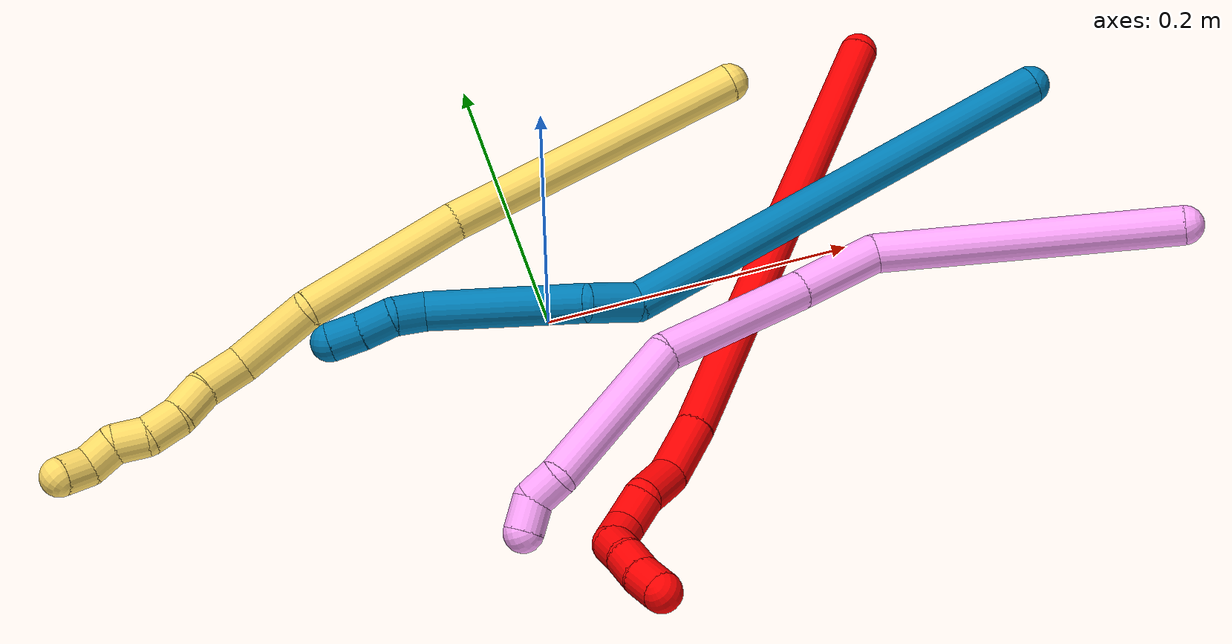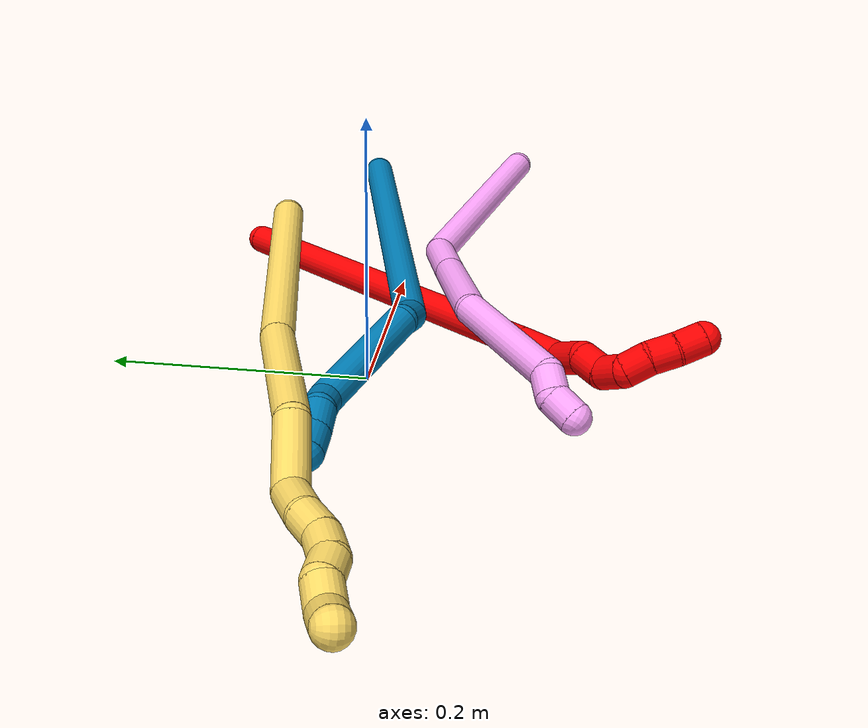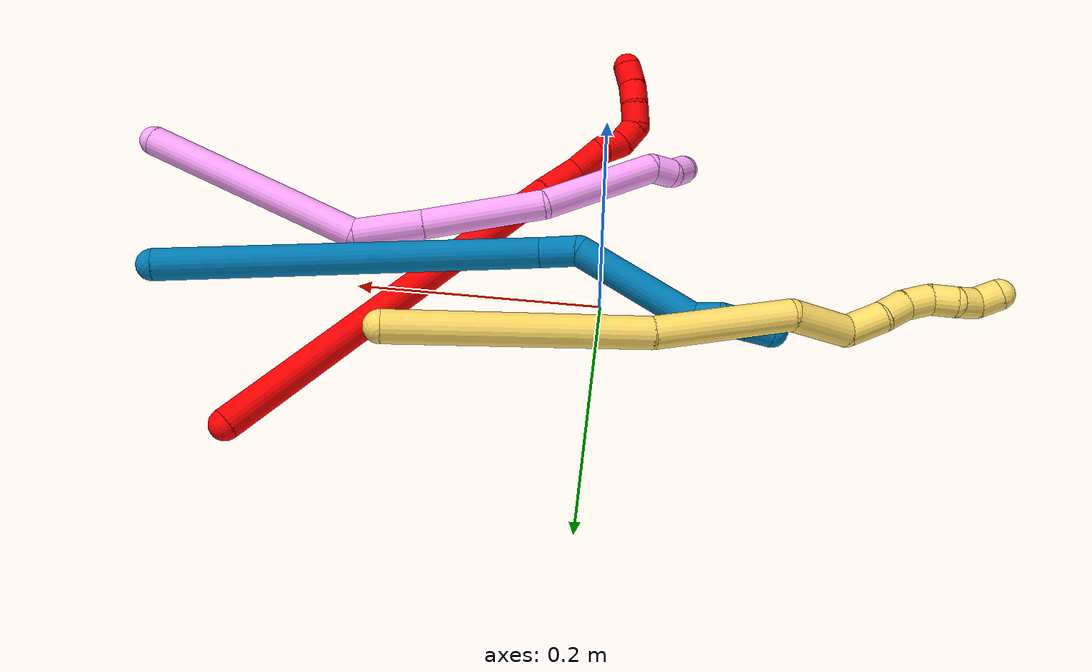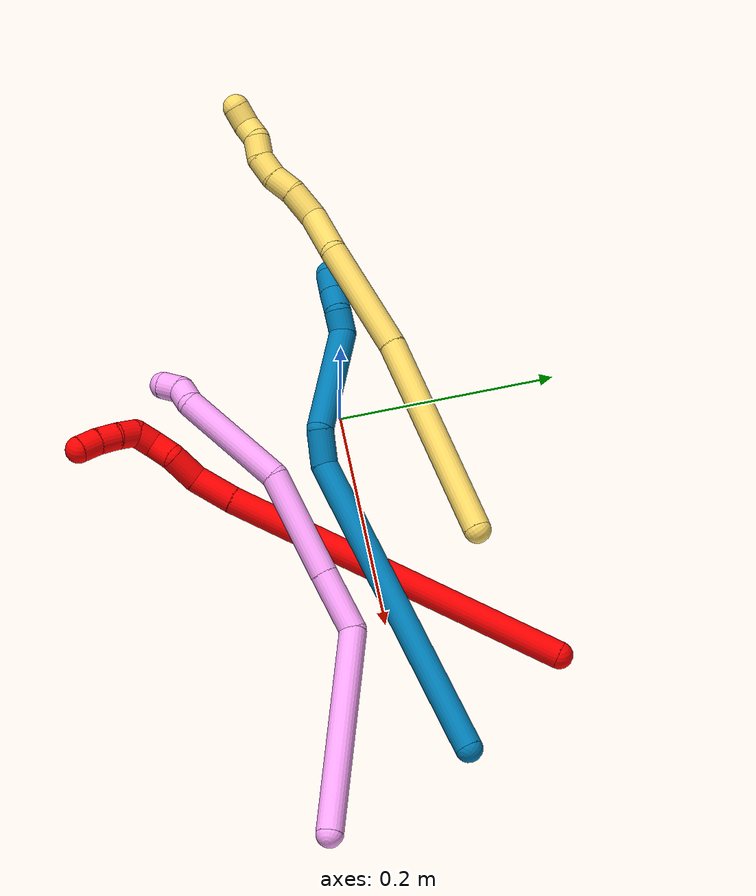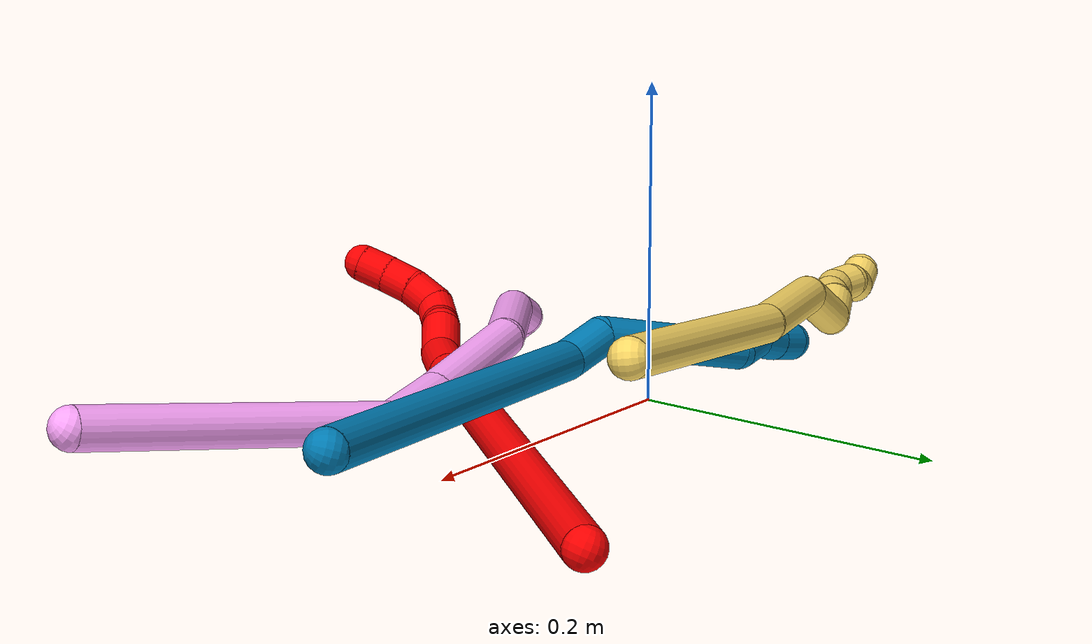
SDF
<sdf version="1.7">
 <world name="default">
  <model name="2">
   <static>0</static>
   <link name="2">
    <collision name="collision-cylinder-e_1_1_4">
     <pose>-0.081338 -0.140689 0.024939 1.39536 -0.517515 -0.43672</pose>
     <geometry><cylinder><radius>0.0125</radius><length>0.328824</length></cylinder></geometry>
     <surface>
      <friction><ode><mu>1.16</mu><mu2>1.16</mu2><slip1>0</slip1><slip2>0</slip2></ode></friction>
      <contact><ode><kp>1e+06</kp><kd>1</kd><max_vel>0</max_vel><min_depth>0.001</min_depth></ode></contact>
     </surface>
    </collision>
    <visual name="visual-cylinder-e_1_1_4">
     <pose>-0.081338 -0.140689 0.024939 1.39536 -0.517515 -0.43672</pose>
     <geometry><cylinder><radius>0.0125</radius><length>0.328824</length></cylinder></geometry>
     <material><ambient>1 0 0 1</ambient></material>
    </visual>
    <collision name="collision-cylinder-e_2_4_5">
     <pose>-0.173275 -0.297369 0.053878 1.32564 -0.571413 -0.450817</pose>
     <geometry><cylinder><radius>0.0125</radius><length>0.039192</length></cylinder></geometry>
     <surface>
      <friction><ode><mu>1.16</mu><mu2>1.16</mu2><slip1>0</slip1><slip2>0</slip2></ode></friction>
      <contact><ode><kp>1e+06</kp><kd>1</kd><max_vel>0</max_vel><min_depth>0.001</min_depth></ode></contact>
     </surface>
    </collision>
    <visual name="visual-cylinder-e_2_4_5">
     <pose>-0.173275 -0.297369 0.053878 1.32564 -0.571413 -0.450817</pose>
     <geometry><cylinder><radius>0.0125</radius><length>0.039192</length></cylinder></geometry>
     <material><ambient>1 0 0 1</ambient></material>
    </visual>
    <collision name="collision-cylinder-e_3_5_6">
     <pose>-0.189959 -0.323875 0.066426 0.888284 -0.422154 -0.203217</pose>
     <geometry><cylinder><radius>0.0125</radius><length>0.029712</length></cylinder></geometry>
     <surface>
      <friction><ode><mu>1.16</mu><mu2>1.16</mu2><slip1>0</slip1><slip2>0</slip2></ode></friction>
      <contact><ode><kp>1e+06</kp><kd>1</kd><max_vel>0</max_vel><min_depth>0.001</min_depth></ode></contact>
     </surface>
    </collision>
    <visual name="visual-cylinder-e_3_5_6">
     <pose>-0.189959 -0.323875 0.066426 0.888284 -0.422154 -0.203217</pose>
     <geometry><cylinder><radius>0.0125</radius><length>0.029712</length></cylinder></geometry>
     <material><ambient>1 0 0 1</ambient></material>
    </visual>
    <collision name="collision-cylinder-e_4_6_7">
     <pose>-0.203669 -0.34236 0.075994 1.44355 -0.759115 -0.675341</pose>
     <geometry><cylinder><radius>0.0125</radius><length>0.022149</length></cylinder></geometry>
     <surface>
      <friction><ode><mu>1.16</mu><mu2>1.16</mu2><slip1>0</slip1><slip2>0</slip2></ode></friction>
      <contact><ode><kp>1e+06</kp><kd>1</kd><max_vel>0</max_vel><min_depth>0.001</min_depth></ode></contact>
     </surface>
    </collision>
    <visual name="visual-cylinder-e_4_6_7">
     <pose>-0.203669 -0.34236 0.075994 1.44355 -0.759115 -0.675341</pose>
     <geometry><cylinder><radius>0.0125</radius><length>0.022149</length></cylinder></geometry>
     <material><ambient>1 0 0 1</ambient></material>
    </visual>
    <collision name="collision-cylinder-e_5_7_8">
     <pose>-0.214045 -0.358622 0.081984 1.03083 -0.27749 -0.157883</pose>
     <geometry><cylinder><radius>0.0125</radius><length>0.020105</length></cylinder></geometry>
     <surface>
      <friction><ode><mu>1.16</mu><mu2>1.16</mu2><slip1>0</slip1><slip2>0</slip2></ode></friction>
      <contact><ode><kp>1e+06</kp><kd>1</kd><max_vel>0</max_vel><min_depth>0.001</min_depth></ode></contact>
     </surface>
    </collision>
    <visual name="visual-cylinder-e_5_7_8">
     <pose>-0.214045 -0.358622 0.081984 1.03083 -0.27749 -0.157883</pose>
     <geometry><cylinder><radius>0.0125</radius><length>0.020105</length></cylinder></geometry>
     <material><ambient>1 0 0 1</ambient></material>
    </visual>
    <collision name="collision-cylinder-e_6_8_9">
     <pose>-0.212675 -0.375698 0.089386 1.30072 0.424891 0.325299</pose>
     <geometry><cylinder><radius>0.0125</radius><length>0.020006</length></cylinder></geometry>
     <surface>
      <friction><ode><mu>1.16</mu><mu2>1.16</mu2><slip1>0</slip1><slip2>0</slip2></ode></friction>
      <contact><ode><kp>1e+06</kp><kd>1</kd><max_vel>0</max_vel><min_depth>0.001</min_depth></ode></contact>
     </surface>
    </collision>
    <visual name="visual-cylinder-e_6_8_9">
     <pose>-0.212675 -0.375698 0.089386 1.30072 0.424891 0.325299</pose>
     <geometry><cylinder><radius>0.0125</radius><length>0.020006</length></cylinder></geometry>
     <material><ambient>1 0 0 1</ambient></material>
    </visual>
    <collision name="collision-cylinder-e_7_9_10">
     <pose>-0.204902 -0.393775 0.092417 1.50639 0.373503 0.350679</pose>
     <geometry><cylinder><radius>0.0125</radius><length>0.020007</length></cylinder></geometry>
     <surface>
      <friction><ode><mu>1.16</mu><mu2>1.16</mu2><slip1>0</slip1><slip2>0</slip2></ode></friction>
      <contact><ode><kp>1e+06</kp><kd>1</kd><max_vel>0</max_vel><min_depth>0.001</min_depth></ode></contact>
     </surface>
    </collision>
    <visual name="visual-cylinder-e_7_9_10">
     <pose>-0.204902 -0.393775 0.092417 1.50639 0.373503 0.350679</pose>
     <geometry><cylinder><radius>0.0125</radius><length>0.020007</length></cylinder></geometry>
     <material><ambient>1 0 0 1</ambient></material>
    </visual>
    <collision name="collision-cylinder-e_8_10_2">
     <pose>-0.196329 -0.411776 0.093109 1.56012 0.514537 0.509309</pose>
     <geometry><cylinder><radius>0.0125</radius><length>0.020004</length></cylinder></geometry>
     <surface>
      <friction><ode><mu>1.16</mu><mu2>1.16</mu2><slip1>0</slip1><slip2>0</slip2></ode></friction>
      <contact><ode><kp>1e+06</kp><kd>1</kd><max_vel>0</max_vel><min_depth>0.001</min_depth></ode></contact>
     </surface>
    </collision>
    <visual name="visual-cylinder-e_8_10_2">
     <pose>-0.196329 -0.411776 0.093109 1.56012 0.514537 0.509309</pose>
     <geometry><cylinder><radius>0.0125</radius><length>0.020004</length></cylinder></geometry>
     <material><ambient>1 0 0 1</ambient></material>
    </visual>
    <collision name="collision-sphere-2">
     <pose>-0.191407 -0.420483 0.093202 0 -0 0</pose>
     <geometry><sphere><radius>0.0125</radius></sphere></geometry>
     <surface>
      <friction><ode><mu>1.16</mu><mu2>1.16</mu2><slip1>0</slip1><slip2>0</slip2></ode></friction>
      <contact><ode><kp>1e+06</kp><kd>1</kd><max_vel>0</max_vel><min_depth>0.001</min_depth></ode></contact>
     </surface>
    </collision>
    <visual name="visual-sphere-2">
     <pose>-0.191407 -0.420483 0.093202 0 -0 0</pose>
     <geometry><sphere><radius>0.0125</radius></sphere></geometry>
     <material><ambient>1 0 0 1</ambient></material>
    </visual>
    <collision name="collision-sphere-10">
     <pose>-0.201252 -0.40307 0.093016 0 -0 0</pose>
     <geometry><sphere><radius>0.0125</radius></sphere></geometry>
     <surface>
      <friction><ode><mu>1.16</mu><mu2>1.16</mu2><slip1>0</slip1><slip2>0</slip2></ode></friction>
      <contact><ode><kp>1e+06</kp><kd>1</kd><max_vel>0</max_vel><min_depth>0.001</min_depth></ode></contact>
     </surface>
    </collision>
    <visual name="visual-sphere-10">
     <pose>-0.201252 -0.40307 0.093016 0 -0 0</pose>
     <geometry><sphere><radius>0.0125</radius></sphere></geometry>
     <material><ambient>1 0 0 1</ambient></material>
    </visual>
    <collision name="collision-sphere-9">
     <pose>-0.208552 -0.384481 0.091817 0 -0 0</pose>
     <geometry><sphere><radius>0.0125</radius></sphere></geometry>
     <surface>
      <friction><ode><mu>1.16</mu><mu2>1.16</mu2><slip1>0</slip1><slip2>0</slip2></ode></friction>
      <contact><ode><kp>1e+06</kp><kd>1</kd><max_vel>0</max_vel><min_depth>0.001</min_depth></ode></contact>
     </surface>
    </collision>
    <visual name="visual-sphere-9">
     <pose>-0.208552 -0.384481 0.091817 0 -0 0</pose>
     <geometry><sphere><radius>0.0125</radius></sphere></geometry>
     <material><ambient>1 0 0 1</ambient></material>
    </visual>
    <collision name="collision-sphere-4">
     <pose>-0.162677 -0.281379 0.049878 0 -0 0</pose>
     <geometry><sphere><radius>0.0125</radius></sphere></geometry>
     <surface>
      <friction><ode><mu>1.16</mu><mu2>1.16</mu2><slip1>0</slip1><slip2>0</slip2></ode></friction>
      <contact><ode><kp>1e+06</kp><kd>1</kd><max_vel>0</max_vel><min_depth>0.001</min_depth></ode></contact>
     </surface>
    </collision>
    <visual name="visual-sphere-4">
     <pose>-0.162677 -0.281379 0.049878 0 -0 0</pose>
     <geometry><sphere><radius>0.0125</radius></sphere></geometry>
     <material><ambient>1 0 0 1</ambient></material>
    </visual>
    <collision name="collision-sphere-1">
     <geometry><sphere><radius>0.0125</radius></sphere></geometry>
     <surface>
      <friction><ode><mu>1.16</mu><mu2>1.16</mu2><slip1>0</slip1><slip2>0</slip2></ode></friction>
      <contact><ode><kp>1e+06</kp><kd>1</kd><max_vel>0</max_vel><min_depth>0.001</min_depth></ode></contact>
     </surface>
    </collision>
    <visual name="visual-sphere-1">
     <geometry><sphere><radius>0.0125</radius></sphere></geometry>
     <material><ambient>1 0 0 1</ambient></material>
    </visual>
    <collision name="collision-sphere-8">
     <pose>-0.216799 -0.366914 0.086954 0 -0 0</pose>
     <geometry><sphere><radius>0.0125</radius></sphere></geometry>
     <surface>
      <friction><ode><mu>1.16</mu><mu2>1.16</mu2><slip1>0</slip1><slip2>0</slip2></ode></friction>
      <contact><ode><kp>1e+06</kp><kd>1</kd><max_vel>0</max_vel><min_depth>0.001</min_depth></ode></contact>
     </surface>
    </collision>
    <visual name="visual-sphere-8">
     <pose>-0.216799 -0.366914 0.086954 0 -0 0</pose>
     <geometry><sphere><radius>0.0125</radius></sphere></geometry>
     <material><ambient>1 0 0 1</ambient></material>
    </visual>
    <collision name="collision-sphere-5">
     <pose>-0.183873 -0.313359 0.057879 0 -0 0</pose>
     <geometry><sphere><radius>0.0125</radius></sphere></geometry>
     <surface>
      <friction><ode><mu>1.16</mu><mu2>1.16</mu2><slip1>0</slip1><slip2>0</slip2></ode></friction>
      <contact><ode><kp>1e+06</kp><kd>1</kd><max_vel>0</max_vel><min_depth>0.001</min_depth></ode></contact>
     </surface>
    </collision>
    <visual name="visual-sphere-5">
     <pose>-0.183873 -0.313359 0.057879 0 -0 0</pose>
     <geometry><sphere><radius>0.0125</radius></sphere></geometry>
     <material><ambient>1 0 0 1</ambient></material>
    </visual>
    <collision name="collision-sphere-6">
     <pose>-0.196046 -0.334391 0.074974 0 -0 0</pose>
     <geometry><sphere><radius>0.0125</radius></sphere></geometry>
     <surface>
      <friction><ode><mu>1.16</mu><mu2>1.16</mu2><slip1>0</slip1><slip2>0</slip2></ode></friction>
      <contact><ode><kp>1e+06</kp><kd>1</kd><max_vel>0</max_vel><min_depth>0.001</min_depth></ode></contact>
     </surface>
    </collision>
    <visual name="visual-sphere-6">
     <pose>-0.196046 -0.334391 0.074974 0 -0 0</pose>
     <geometry><sphere><radius>0.0125</radius></sphere></geometry>
     <material><ambient>1 0 0 1</ambient></material>
    </visual>
    <collision name="collision-sphere-7">
     <pose>-0.211291 -0.350329 0.077013 0 -0 0</pose>
     <geometry><sphere><radius>0.0125</radius></sphere></geometry>
     <surface>
      <friction><ode><mu>1.16</mu><mu2>1.16</mu2><slip1>0</slip1><slip2>0</slip2></ode></friction>
      <contact><ode><kp>1e+06</kp><kd>1</kd><max_vel>0</max_vel><min_depth>0.001</min_depth></ode></contact>
     </surface>
    </collision>
    <visual name="visual-sphere-7">
     <pose>-0.211291 -0.350329 0.077013 0 -0 0</pose>
     <geometry><sphere><radius>0.0125</radius></sphere></geometry>
     <material><ambient>1 0 0 1</ambient></material>
    </visual>
    <inertial>
     <pose>-0.120554 -0.211929 0.042234 0 -0 0</pose>
     <mass>0.5</mass>
     <inertia>
      <ixx>0.001246</ixx>
      <ixy>0</ixy>
      <ixz>0</ixz>
      <iyy>-3.7e-05</iyy>
      <iyz>0</iyz>
      <izz>0.004045</izz>
     </inertia>
    </inertial>
   </link>
   <pose>0.261971 0.146852 0.011496 -0.128845 -0.484479 -0.067757</pose>
  </model>
  <model name="4">
   <static>0</static>
   <link name="4">
    <collision name="collision-cylinder-e_1_1_4">
     <pose>-0.023985 0.031417 -0.088422 -2.8002 -0.250241 1.26073</pose>
     <geometry><cylinder><radius>0.0125</radius><length>0.193708</length></cylinder></geometry>
     <surface>
      <friction><ode><mu>1.16</mu><mu2>1.16</mu2><slip1>0</slip1><slip2>0</slip2></ode></friction>
      <contact><ode><kp>1e+06</kp><kd>1</kd><max_vel>0</max_vel><min_depth>0.001</min_depth></ode></contact>
     </surface>
    </collision>
    <visual name="visual-cylinder-e_1_1_4">
     <pose>-0.023985 0.031417 -0.088422 -2.8002 -0.250241 1.26073</pose>
     <geometry><cylinder><radius>0.0125</radius><length>0.193708</length></cylinder></geometry>
     <material><ambient>1 0.65098 0.996078 1</ambient></material>
    </visual>
    <collision name="collision-cylinder-e_2_4_5">
     <pose>-0.069653 0.067715 -0.195097 -2.8803 -0.854034 2.57934</pose>
     <geometry><cylinder><radius>0.0125</radius><length>0.057522</length></cylinder></geometry>
     <surface>
      <friction><ode><mu>1.16</mu><mu2>1.16</mu2><slip1>0</slip1><slip2>0</slip2></ode></friction>
      <contact><ode><kp>1e+06</kp><kd>1</kd><max_vel>0</max_vel><min_depth>0.001</min_depth></ode></contact>
     </surface>
    </collision>
    <visual name="visual-cylinder-e_2_4_5">
     <pose>-0.069653 0.067715 -0.195097 -2.8803 -0.854034 2.57934</pose>
     <geometry><cylinder><radius>0.0125</radius><length>0.057522</length></cylinder></geometry>
     <material><ambient>1 0.65098 0.996078 1</ambient></material>
    </visual>
    <collision name="collision-cylinder-e_3_5_6">
     <pose>-0.129833 0.083025 -0.244264 -2.81623 -0.867737 2.46066</pose>
     <geometry><cylinder><radius>0.0125</radius><length>0.100924</length></cylinder></geometry>
     <surface>
      <friction><ode><mu>1.16</mu><mu2>1.16</mu2><slip1>0</slip1><slip2>0</slip2></ode></friction>
      <contact><ode><kp>1e+06</kp><kd>1</kd><max_vel>0</max_vel><min_depth>0.001</min_depth></ode></contact>
     </surface>
    </collision>
    <visual name="visual-cylinder-e_3_5_6">
     <pose>-0.129833 0.083025 -0.244264 -2.81623 -0.867737 2.46066</pose>
     <geometry><cylinder><radius>0.0125</radius><length>0.100924</length></cylinder></geometry>
     <material><ambient>1 0.65098 0.996078 1</ambient></material>
    </visual>
    <collision name="collision-cylinder-e_4_6_7">
     <pose>-0.214588 0.085701 -0.300271 2.84188 -1.05445 -2.63409</pose>
     <geometry><cylinder><radius>0.0125</radius><length>0.106387</length></cylinder></geometry>
     <surface>
      <friction><ode><mu>1.16</mu><mu2>1.16</mu2><slip1>0</slip1><slip2>0</slip2></ode></friction>
      <contact><ode><kp>1e+06</kp><kd>1</kd><max_vel>0</max_vel><min_depth>0.001</min_depth></ode></contact>
     </surface>
    </collision>
    <visual name="visual-cylinder-e_4_6_7">
     <pose>-0.214588 0.085701 -0.300271 2.84188 -1.05445 -2.63409</pose>
     <geometry><cylinder><radius>0.0125</radius><length>0.106387</length></cylinder></geometry>
     <material><ambient>1 0.65098 0.996078 1</ambient></material>
    </visual>
    <collision name="collision-cylinder-e_5_7_8">
     <pose>-0.266192 0.075392 -0.33386 2.84946 -0.542233 -2.16802</pose>
     <geometry><cylinder><radius>0.0125</radius><length>0.020719</length></cylinder></geometry>
     <surface>
      <friction><ode><mu>1.16</mu><mu2>1.16</mu2><slip1>0</slip1><slip2>0</slip2></ode></friction>
      <contact><ode><kp>1e+06</kp><kd>1</kd><max_vel>0</max_vel><min_depth>0.001</min_depth></ode></contact>
     </surface>
    </collision>
    <visual name="visual-cylinder-e_5_7_8">
     <pose>-0.266192 0.075392 -0.33386 2.84946 -0.542233 -2.16802</pose>
     <geometry><cylinder><radius>0.0125</radius><length>0.020719</length></cylinder></geometry>
     <material><ambient>1 0.65098 0.996078 1</ambient></material>
    </visual>
    <collision name="collision-cylinder-e_6_8_2">
     <pose>-0.278852 0.066623 -0.346286 2.13472 -0.782884 -1.28622</pose>
     <geometry><cylinder><radius>0.0125</radius><length>0.02074</length></cylinder></geometry>
     <surface>
      <friction><ode><mu>1.16</mu><mu2>1.16</mu2><slip1>0</slip1><slip2>0</slip2></ode></friction>
      <contact><ode><kp>1e+06</kp><kd>1</kd><max_vel>0</max_vel><min_depth>0.001</min_depth></ode></contact>
     </surface>
    </collision>
    <visual name="visual-cylinder-e_6_8_2">
     <pose>-0.278852 0.066623 -0.346286 2.13472 -0.782884 -1.28622</pose>
     <geometry><cylinder><radius>0.0125</radius><length>0.02074</length></cylinder></geometry>
     <material><ambient>1 0.65098 0.996078 1</ambient></material>
    </visual>
    <collision name="collision-sphere-2">
     <pose>-0.286166 0.06041 -0.350216 0 -0 0</pose>
     <geometry><sphere><radius>0.0125</radius></sphere></geometry>
     <surface>
      <friction><ode><mu>1.16</mu><mu2>1.16</mu2><slip1>0</slip1><slip2>0</slip2></ode></friction>
      <contact><ode><kp>1e+06</kp><kd>1</kd><max_vel>0</max_vel><min_depth>0.001</min_depth></ode></contact>
     </surface>
    </collision>
    <visual name="visual-sphere-2">
     <pose>-0.286166 0.06041 -0.350216 0 -0 0</pose>
     <geometry><sphere><radius>0.0125</radius></sphere></geometry>
     <material><ambient>1 0.65098 0.996078 1</ambient></material>
    </visual>
    <collision name="collision-sphere-4">
     <pose>-0.047969 0.062834 -0.176844 0 -0 0</pose>
     <geometry><sphere><radius>0.0125</radius></sphere></geometry>
     <surface>
      <friction><ode><mu>1.16</mu><mu2>1.16</mu2><slip1>0</slip1><slip2>0</slip2></ode></friction>
      <contact><ode><kp>1e+06</kp><kd>1</kd><max_vel>0</max_vel><min_depth>0.001</min_depth></ode></contact>
     </surface>
    </collision>
    <visual name="visual-sphere-4">
     <pose>-0.047969 0.062834 -0.176844 0 -0 0</pose>
     <geometry><sphere><radius>0.0125</radius></sphere></geometry>
     <material><ambient>1 0.65098 0.996078 1</ambient></material>
    </visual>
    <collision name="collision-sphere-1">
     <geometry><sphere><radius>0.0125</radius></sphere></geometry>
     <surface>
      <friction><ode><mu>1.16</mu><mu2>1.16</mu2><slip1>0</slip1><slip2>0</slip2></ode></friction>
      <contact><ode><kp>1e+06</kp><kd>1</kd><max_vel>0</max_vel><min_depth>0.001</min_depth></ode></contact>
     </surface>
    </collision>
    <visual name="visual-sphere-1">
     <geometry><sphere><radius>0.0125</radius></sphere></geometry>
     <material><ambient>1 0.65098 0.996078 1</ambient></material>
    </visual>
    <collision name="collision-sphere-8">
     <pose>-0.271538 0.072836 -0.342357 0 -0 0</pose>
     <geometry><sphere><radius>0.0125</radius></sphere></geometry>
     <surface>
      <friction><ode><mu>1.16</mu><mu2>1.16</mu2><slip1>0</slip1><slip2>0</slip2></ode></friction>
      <contact><ode><kp>1e+06</kp><kd>1</kd><max_vel>0</max_vel><min_depth>0.001</min_depth></ode></contact>
     </surface>
    </collision>
    <visual name="visual-sphere-8">
     <pose>-0.271538 0.072836 -0.342357 0 -0 0</pose>
     <geometry><sphere><radius>0.0125</radius></sphere></geometry>
     <material><ambient>1 0.65098 0.996078 1</ambient></material>
    </visual>
    <collision name="collision-sphere-5">
     <pose>-0.091337 0.072596 -0.21335 0 -0 0</pose>
     <geometry><sphere><radius>0.0125</radius></sphere></geometry>
     <surface>
      <friction><ode><mu>1.16</mu><mu2>1.16</mu2><slip1>0</slip1><slip2>0</slip2></ode></friction>
      <contact><ode><kp>1e+06</kp><kd>1</kd><max_vel>0</max_vel><min_depth>0.001</min_depth></ode></contact>
     </surface>
    </collision>
    <visual name="visual-sphere-5">
     <pose>-0.091337 0.072596 -0.21335 0 -0 0</pose>
     <geometry><sphere><radius>0.0125</radius></sphere></geometry>
     <material><ambient>1 0.65098 0.996078 1</ambient></material>
    </visual>
    <collision name="collision-sphere-6">
     <pose>-0.168329 0.093455 -0.275179 0 -0 0</pose>
     <geometry><sphere><radius>0.0125</radius></sphere></geometry>
     <surface>
      <friction><ode><mu>1.16</mu><mu2>1.16</mu2><slip1>0</slip1><slip2>0</slip2></ode></friction>
      <contact><ode><kp>1e+06</kp><kd>1</kd><max_vel>0</max_vel><min_depth>0.001</min_depth></ode></contact>
     </surface>
    </collision>
    <visual name="visual-sphere-6">
     <pose>-0.168329 0.093455 -0.275179 0 -0 0</pose>
     <geometry><sphere><radius>0.0125</radius></sphere></geometry>
     <material><ambient>1 0.65098 0.996078 1</ambient></material>
    </visual>
    <collision name="collision-sphere-7">
     <pose>-0.260846 0.077947 -0.325362 0 -0 0</pose>
     <geometry><sphere><radius>0.0125</radius></sphere></geometry>
     <surface>
      <friction><ode><mu>1.16</mu><mu2>1.16</mu2><slip1>0</slip1><slip2>0</slip2></ode></friction>
      <contact><ode><kp>1e+06</kp><kd>1</kd><max_vel>0</max_vel><min_depth>0.001</min_depth></ode></contact>
     </surface>
    </collision>
    <visual name="visual-sphere-7">
     <pose>-0.260846 0.077947 -0.325362 0 -0 0</pose>
     <geometry><sphere><radius>0.0125</radius></sphere></geometry>
     <material><ambient>1 0.65098 0.996078 1</ambient></material>
    </visual>
    <inertial>
     <pose>-0.111768 0.060843 -0.198093 0 -0 0</pose>
     <mass>0.5</mass>
     <inertia><ixx>0.00064</ixx><ixy>0</ixy><ixz>0</ixz><iyy>0.000657</iyy><iyz>0</iyz><izz>9.5e-05</izz></inertia>
    </inertial>
   </link>
   <pose>0.388503 -0.089909 0.059744 0.967735 0.331373 0.933163</pose>
  </model>
  <model name="5">
   <static>0</static>
   <link name="5">
    <collision name="collision-cylinder-e_1_1_4">
     <pose>-0.082224 -0.052472 -0.018719 1.91347 -0.975294 -1.28996</pose>
     <geometry><cylinder><radius>0.0125</radius><length>0.198641</length></cylinder></geometry>
     <surface>
      <friction><ode><mu>1.16</mu><mu2>1.16</mu2><slip1>0</slip1><slip2>0</slip2></ode></friction>
      <contact><ode><kp>1e+06</kp><kd>1</kd><max_vel>0</max_vel><min_depth>0.001</min_depth></ode></contact>
     </surface>
    </collision>
    <visual name="visual-cylinder-e_1_1_4">
     <pose>-0.082224 -0.052472 -0.018719 1.91347 -0.975294 -1.28996</pose>
     <geometry><cylinder><radius>0.0125</radius><length>0.198641</length></cylinder></geometry>
     <material><ambient>1 0.858824 0.4 1</ambient></material>
    </visual>
    <collision name="collision-cylinder-e_2_4_5">
     <pose>-0.212803 -0.130022 -0.041203 1.71982 -1.08779 -1.22455</pose>
     <geometry><cylinder><radius>0.0125</radius><length>0.109201</length></cylinder></geometry>
     <surface>
      <friction><ode><mu>1.16</mu><mu2>1.16</mu2><slip1>0</slip1><slip2>0</slip2></ode></friction>
      <contact><ode><kp>1e+06</kp><kd>1</kd><max_vel>0</max_vel><min_depth>0.001</min_depth></ode></contact>
     </surface>
    </collision>
    <visual name="visual-cylinder-e_2_4_5">
     <pose>-0.212803 -0.130022 -0.041203 1.71982 -1.08779 -1.22455</pose>
     <geometry><cylinder><radius>0.0125</radius><length>0.109201</length></cylinder></geometry>
     <material><ambient>1 0.858824 0.4 1</ambient></material>
    </visual>
    <collision name="collision-cylinder-e_3_5_6">
     <pose>-0.277282 -0.176516 -0.047687 1.69708 -0.641527 -0.721191</pose>
     <geometry><cylinder><radius>0.0125</radius><length>0.053891</length></cylinder></geometry>
     <surface>
      <friction><ode><mu>1.16</mu><mu2>1.16</mu2><slip1>0</slip1><slip2>0</slip2></ode></friction>
      <contact><ode><kp>1e+06</kp><kd>1</kd><max_vel>0</max_vel><min_depth>0.001</min_depth></ode></contact>
     </surface>
    </collision>
    <visual name="visual-cylinder-e_3_5_6">
     <pose>-0.277282 -0.176516 -0.047687 1.69708 -0.641527 -0.721191</pose>
     <geometry><cylinder><radius>0.0125</radius><length>0.053891</length></cylinder></geometry>
     <material><ambient>1 0.858824 0.4 1</ambient></material>
    </visual>
    <collision name="collision-cylinder-e_4_6_7">
     <pose>-0.308563 -0.202294 -0.049387 1.3411 -1.28348 -1.07004</pose>
     <geometry><cylinder><radius>0.0125</radius><length>0.031608</length></cylinder></geometry>
     <surface>
      <friction><ode><mu>1.16</mu><mu2>1.16</mu2><slip1>0</slip1><slip2>0</slip2></ode></friction>
      <contact><ode><kp>1e+06</kp><kd>1</kd><max_vel>0</max_vel><min_depth>0.001</min_depth></ode></contact>
     </surface>
    </collision>
    <visual name="visual-cylinder-e_4_6_7">
     <pose>-0.308563 -0.202294 -0.049387 1.3411 -1.28348 -1.07004</pose>
     <geometry><cylinder><radius>0.0125</radius><length>0.031608</length></cylinder></geometry>
     <material><ambient>1 0.858824 0.4 1</ambient></material>
    </visual>
    <collision name="collision-cylinder-e_5_7_8">
     <pose>-0.334082 -0.210892 -0.045233 0.933929 -1.10031 -0.599766</pose>
     <geometry><cylinder><radius>0.0125</radius><length>0.023252</length></cylinder></geometry>
     <surface>
      <friction><ode><mu>1.16</mu><mu2>1.16</mu2><slip1>0</slip1><slip2>0</slip2></ode></friction>
      <contact><ode><kp>1e+06</kp><kd>1</kd><max_vel>0</max_vel><min_depth>0.001</min_depth></ode></contact>
     </surface>
    </collision>
    <visual name="visual-cylinder-e_5_7_8">
     <pose>-0.334082 -0.210892 -0.045233 0.933929 -1.10031 -0.599766</pose>
     <geometry><cylinder><radius>0.0125</radius><length>0.023252</length></cylinder></geometry>
     <material><ambient>1 0.858824 0.4 1</ambient></material>
    </visual>
    <collision name="collision-cylinder-e_6_8_9">
     <pose>-0.354822 -0.219777 -0.042137 1.5791 -1.14962 -1.15722</pose>
     <geometry><cylinder><radius>0.0125</radius><length>0.022742</length></cylinder></geometry>
     <surface>
      <friction><ode><mu>1.16</mu><mu2>1.16</mu2><slip1>0</slip1><slip2>0</slip2></ode></friction>
      <contact><ode><kp>1e+06</kp><kd>1</kd><max_vel>0</max_vel><min_depth>0.001</min_depth></ode></contact>
     </surface>
    </collision>
    <visual name="visual-cylinder-e_6_8_9">
     <pose>-0.354822 -0.219777 -0.042137 1.5791 -1.14962 -1.15722</pose>
     <geometry><cylinder><radius>0.0125</radius><length>0.022742</length></cylinder></geometry>
     <material><ambient>1 0.858824 0.4 1</ambient></material>
    </visual>
    <collision name="collision-cylinder-e_7_9_10">
     <pose>-0.373603 -0.228636 -0.046355 2.35255 -0.956129 -1.78782</pose>
     <geometry><cylinder><radius>0.0125</radius><length>0.020573</length></cylinder></geometry>
     <surface>
      <friction><ode><mu>1.16</mu><mu2>1.16</mu2><slip1>0</slip1><slip2>0</slip2></ode></friction>
      <contact><ode><kp>1e+06</kp><kd>1</kd><max_vel>0</max_vel><min_depth>0.001</min_depth></ode></contact>
     </surface>
    </collision>
    <visual name="visual-cylinder-e_7_9_10">
     <pose>-0.373603 -0.228636 -0.046355 2.35255 -0.956129 -1.78782</pose>
     <geometry><cylinder><radius>0.0125</radius><length>0.020573</length></cylinder></geometry>
     <material><ambient>1 0.858824 0.4 1</ambient></material>
    </visual>
    <collision name="collision-cylinder-e_8_10_11">
     <pose>-0.389276 -0.239748 -0.050552 1.57335 -0.811292 -0.813143</pose>
     <geometry><cylinder><radius>0.0125</radius><length>0.020047</length></cylinder></geometry>
     <surface>
      <friction><ode><mu>1.16</mu><mu2>1.16</mu2><slip1>0</slip1><slip2>0</slip2></ode></friction>
      <contact><ode><kp>1e+06</kp><kd>1</kd><max_vel>0</max_vel><min_depth>0.001</min_depth></ode></contact>
     </surface>
    </collision>
    <visual name="visual-cylinder-e_8_10_11">
     <pose>-0.389276 -0.239748 -0.050552 1.57335 -0.811292 -0.813143</pose>
     <geometry><cylinder><radius>0.0125</radius><length>0.020047</length></cylinder></geometry>
     <material><ambient>1 0.858824 0.4 1</ambient></material>
    </visual>
    <collision name="collision-cylinder-e_9_11_2">
     <pose>-0.406459 -0.247773 -0.051512 2.26891 -1.42398 -2.15078</pose>
     <geometry><cylinder><radius>0.0125</radius><length>0.020045</length></cylinder></geometry>
     <surface>
      <friction><ode><mu>1.16</mu><mu2>1.16</mu2><slip1>0</slip1><slip2>0</slip2></ode></friction>
      <contact><ode><kp>1e+06</kp><kd>1</kd><max_vel>0</max_vel><min_depth>0.001</min_depth></ode></contact>
     </surface>
    </collision>
    <visual name="visual-cylinder-e_9_11_2">
     <pose>-0.406459 -0.247773 -0.051512 2.26891 -1.42398 -2.15078</pose>
     <geometry><cylinder><radius>0.0125</radius><length>0.020045</length></cylinder></geometry>
     <material><ambient>1 0.858824 0.4 1</ambient></material>
    </visual>
    <collision name="collision-sphere-2">
     <pose>-0.416373 -0.248896 -0.052455 0 -0 0</pose>
     <geometry><sphere><radius>0.0125</radius></sphere></geometry>
     <surface>
      <friction><ode><mu>1.16</mu><mu2>1.16</mu2><slip1>0</slip1><slip2>0</slip2></ode></friction>
      <contact><ode><kp>1e+06</kp><kd>1</kd><max_vel>0</max_vel><min_depth>0.001</min_depth></ode></contact>
     </surface>
    </collision>
    <visual name="visual-sphere-2">
     <pose>-0.416373 -0.248896 -0.052455 0 -0 0</pose>
     <geometry><sphere><radius>0.0125</radius></sphere></geometry>
     <material><ambient>1 0.858824 0.4 1</ambient></material>
    </visual>
    <collision name="collision-sphere-11">
     <pose>-0.396545 -0.24665 -0.05057 0 -0 0</pose>
     <geometry><sphere><radius>0.0125</radius></sphere></geometry>
     <surface>
      <friction><ode><mu>1.16</mu><mu2>1.16</mu2><slip1>0</slip1><slip2>0</slip2></ode></friction>
      <contact><ode><kp>1e+06</kp><kd>1</kd><max_vel>0</max_vel><min_depth>0.001</min_depth></ode></contact>
     </surface>
    </collision>
    <visual name="visual-sphere-11">
     <pose>-0.396545 -0.24665 -0.05057 0 -0 0</pose>
     <geometry><sphere><radius>0.0125</radius></sphere></geometry>
     <material><ambient>1 0.858824 0.4 1</ambient></material>
    </visual>
    <collision name="collision-sphere-10">
     <pose>-0.382007 -0.232846 -0.050535 0 -0 0</pose>
     <geometry><sphere><radius>0.0125</radius></sphere></geometry>
     <surface>
      <friction><ode><mu>1.16</mu><mu2>1.16</mu2><slip1>0</slip1><slip2>0</slip2></ode></friction>
      <contact><ode><kp>1e+06</kp><kd>1</kd><max_vel>0</max_vel><min_depth>0.001</min_depth></ode></contact>
     </surface>
    </collision>
    <visual name="visual-sphere-10">
     <pose>-0.382007 -0.232846 -0.050535 0 -0 0</pose>
     <geometry><sphere><radius>0.0125</radius></sphere></geometry>
     <material><ambient>1 0.858824 0.4 1</ambient></material>
    </visual>
    <collision name="collision-sphere-9">
     <pose>-0.365199 -0.224426 -0.042176 0 -0 0</pose>
     <geometry><sphere><radius>0.0125</radius></sphere></geometry>
     <surface>
      <friction><ode><mu>1.16</mu><mu2>1.16</mu2><slip1>0</slip1><slip2>0</slip2></ode></friction>
      <contact><ode><kp>1e+06</kp><kd>1</kd><max_vel>0</max_vel><min_depth>0.001</min_depth></ode></contact>
     </surface>
    </collision>
    <visual name="visual-sphere-9">
     <pose>-0.365199 -0.224426 -0.042176 0 -0 0</pose>
     <geometry><sphere><radius>0.0125</radius></sphere></geometry>
     <material><ambient>1 0.858824 0.4 1</ambient></material>
    </visual>
    <collision name="collision-sphere-4">
     <pose>-0.164449 -0.104945 -0.037438 0 -0 0</pose>
     <geometry><sphere><radius>0.0125</radius></sphere></geometry>
     <surface>
      <friction><ode><mu>1.16</mu><mu2>1.16</mu2><slip1>0</slip1><slip2>0</slip2></ode></friction>
      <contact><ode><kp>1e+06</kp><kd>1</kd><max_vel>0</max_vel><min_depth>0.001</min_depth></ode></contact>
     </surface>
    </collision>
    <visual name="visual-sphere-4">
     <pose>-0.164449 -0.104945 -0.037438 0 -0 0</pose>
     <geometry><sphere><radius>0.0125</radius></sphere></geometry>
     <material><ambient>1 0.858824 0.4 1</ambient></material>
    </visual>
    <collision name="collision-sphere-1">
     <geometry><sphere><radius>0.0125</radius></sphere></geometry>
     <surface>
      <friction><ode><mu>1.16</mu><mu2>1.16</mu2><slip1>0</slip1><slip2>0</slip2></ode></friction>
      <contact><ode><kp>1e+06</kp><kd>1</kd><max_vel>0</max_vel><min_depth>0.001</min_depth></ode></contact>
     </surface>
    </collision>
    <visual name="visual-sphere-1">
     <geometry><sphere><radius>0.0125</radius></sphere></geometry>
     <material><ambient>1 0.858824 0.4 1</ambient></material>
    </visual>
    <collision name="collision-sphere-8">
     <pose>-0.344445 -0.215129 -0.042099 0 -0 0</pose>
     <geometry><sphere><radius>0.0125</radius></sphere></geometry>
     <surface>
      <friction><ode><mu>1.16</mu><mu2>1.16</mu2><slip1>0</slip1><slip2>0</slip2></ode></friction>
      <contact><ode><kp>1e+06</kp><kd>1</kd><max_vel>0</max_vel><min_depth>0.001</min_depth></ode></contact>
     </surface>
    </collision>
    <visual name="visual-sphere-8">
     <pose>-0.344445 -0.215129 -0.042099 0 -0 0</pose>
     <geometry><sphere><radius>0.0125</radius></sphere></geometry>
     <material><ambient>1 0.858824 0.4 1</ambient></material>
    </visual>
    <collision name="collision-sphere-5">
     <pose>-0.261158 -0.1551 -0.044969 0 -0 0</pose>
     <geometry><sphere><radius>0.0125</radius></sphere></geometry>
     <surface>
      <friction><ode><mu>1.16</mu><mu2>1.16</mu2><slip1>0</slip1><slip2>0</slip2></ode></friction>
      <contact><ode><kp>1e+06</kp><kd>1</kd><max_vel>0</max_vel><min_depth>0.001</min_depth></ode></contact>
     </surface>
    </collision>
    <visual name="visual-sphere-5">
     <pose>-0.261158 -0.1551 -0.044969 0 -0 0</pose>
     <geometry><sphere><radius>0.0125</radius></sphere></geometry>
     <material><ambient>1 0.858824 0.4 1</ambient></material>
    </visual>
    <collision name="collision-sphere-6">
     <pose>-0.293407 -0.197933 -0.050406 0 -0 0</pose>
     <geometry><sphere><radius>0.0125</radius></sphere></geometry>
     <surface>
      <friction><ode><mu>1.16</mu><mu2>1.16</mu2><slip1>0</slip1><slip2>0</slip2></ode></friction>
      <contact><ode><kp>1e+06</kp><kd>1</kd><max_vel>0</max_vel><min_depth>0.001</min_depth></ode></contact>
     </surface>
    </collision>
    <visual name="visual-sphere-6">
     <pose>-0.293407 -0.197933 -0.050406 0 -0 0</pose>
     <geometry><sphere><radius>0.0125</radius></sphere></geometry>
     <material><ambient>1 0.858824 0.4 1</ambient></material>
    </visual>
    <collision name="collision-sphere-7">
     <pose>-0.323719 -0.206655 -0.048367 0 -0 0</pose>
     <geometry><sphere><radius>0.0125</radius></sphere></geometry>
     <surface>
      <friction><ode><mu>1.16</mu><mu2>1.16</mu2><slip1>0</slip1><slip2>0</slip2></ode></friction>
      <contact><ode><kp>1e+06</kp><kd>1</kd><max_vel>0</max_vel><min_depth>0.001</min_depth></ode></contact>
     </surface>
    </collision>
    <visual name="visual-sphere-7">
     <pose>-0.323719 -0.206655 -0.048367 0 -0 0</pose>
     <geometry><sphere><radius>0.0125</radius></sphere></geometry>
     <material><ambient>1 0.858824 0.4 1</ambient></material>
    </visual>
    <inertial>
     <pose>-0.207485 -0.129814 -0.034717 0 -0 0</pose>
     <mass>0.5</mass>
     <inertia>
      <ixx>-0.000318</ixx>
      <ixy>0</ixy>
      <ixz>0</ixz>
      <iyy>9.9e-05</iyy>
      <iyz>0</iyz>
      <izz>0.00108</izz>
     </inertia>
    </inertial>
   </link>
   <pose>0.150052 0.093228 0.076355 1.74003 0.393008 0.463143</pose>
  </model>
  <model name="9">
   <static>0</static>
   <link name="9">
    <collision name="collision-cylinder-e_1_1_4">
     <pose>-0.117002 0.020149 0.090144 -0.219908 -0.902514 0.106899</pose>
     <geometry><cylinder><radius>0.0125</radius><length>0.298136</length></cylinder></geometry>
     <surface>
      <friction><ode><mu>1.16</mu><mu2>1.16</mu2><slip1>0</slip1><slip2>0</slip2></ode></friction>
      <contact><ode><kp>1e+06</kp><kd>1</kd><max_vel>0</max_vel><min_depth>0.001</min_depth></ode></contact>
     </surface>
    </collision>
    <visual name="visual-cylinder-e_1_1_4">
     <pose>-0.117002 0.020149 0.090144 -0.219908 -0.902514 0.106899</pose>
     <geometry><cylinder><radius>0.0125</radius><length>0.298136</length></cylinder></geometry>
     <material><ambient>0 0.490196 0.709804 1</ambient></material>
    </visual>
    <collision name="collision-cylinder-e_2_4_5">
     <pose>-0.245296 0.034757 0.191272 0.46724 -0.742578 -0.184774</pose>
     <geometry><cylinder><radius>0.0125</radius><length>0.033399</length></cylinder></geometry>
     <surface>
      <friction><ode><mu>1.16</mu><mu2>1.16</mu2><slip1>0</slip1><slip2>0</slip2></ode></friction>
      <contact><ode><kp>1e+06</kp><kd>1</kd><max_vel>0</max_vel><min_depth>0.001</min_depth></ode></contact>
     </surface>
    </collision>
    <visual name="visual-cylinder-e_2_4_5">
     <pose>-0.245296 0.034757 0.191272 0.46724 -0.742578 -0.184774</pose>
     <geometry><cylinder><radius>0.0125</radius><length>0.033399</length></cylinder></geometry>
     <material><ambient>0 0.490196 0.709804 1</ambient></material>
    </visual>
    <collision name="collision-cylinder-e_3_5_6">
     <pose>-0.271256 0.027824 0.252364 0.027757 -0.284687 -0.003978</pose>
     <geometry><cylinder><radius>0.0125</radius><length>0.104458</length></cylinder></geometry>
     <surface>
      <friction><ode><mu>1.16</mu><mu2>1.16</mu2><slip1>0</slip1><slip2>0</slip2></ode></friction>
      <contact><ode><kp>1e+06</kp><kd>1</kd><max_vel>0</max_vel><min_depth>0.001</min_depth></ode></contact>
     </surface>
    </collision>
    <visual name="visual-cylinder-e_3_5_6">
     <pose>-0.271256 0.027824 0.252364 0.027757 -0.284687 -0.003978</pose>
     <geometry><cylinder><radius>0.0125</radius><length>0.104458</length></cylinder></geometry>
     <material><ambient>0 0.490196 0.709804 1</ambient></material>
    </visual>
    <collision name="collision-cylinder-e_4_6_7">
     <pose>-0.293609 0.024438 0.309564 0.274249 -0.806376 -0.117586</pose>
     <geometry><cylinder><radius>0.0125</radius><length>0.021291</length></cylinder></geometry>
     <surface>
      <friction><ode><mu>1.16</mu><mu2>1.16</mu2><slip1>0</slip1><slip2>0</slip2></ode></friction>
      <contact><ode><kp>1e+06</kp><kd>1</kd><max_vel>0</max_vel><min_depth>0.001</min_depth></ode></contact>
     </surface>
    </collision>
    <visual name="visual-cylinder-e_4_6_7">
     <pose>-0.293609 0.024438 0.309564 0.274249 -0.806376 -0.117586</pose>
     <geometry><cylinder><radius>0.0125</radius><length>0.021291</length></cylinder></geometry>
     <material><ambient>0 0.490196 0.709804 1</ambient></material>
    </visual>
    <collision name="collision-cylinder-e_5_7_8">
     <pose>-0.307394 0.024774 0.325259 -0.264698 -0.600283 0.082357</pose>
     <geometry><cylinder><radius>0.0125</radius><length>0.021602</length></cylinder></geometry>
     <surface>
      <friction><ode><mu>1.16</mu><mu2>1.16</mu2><slip1>0</slip1><slip2>0</slip2></ode></friction>
      <contact><ode><kp>1e+06</kp><kd>1</kd><max_vel>0</max_vel><min_depth>0.001</min_depth></ode></contact>
     </surface>
    </collision>
    <visual name="visual-cylinder-e_5_7_8">
     <pose>-0.307394 0.024774 0.325259 -0.264698 -0.600283 0.082357</pose>
     <geometry><cylinder><radius>0.0125</radius><length>0.021602</length></cylinder></geometry>
     <material><ambient>0 0.490196 0.709804 1</ambient></material>
    </visual>
    <collision name="collision-cylinder-e_6_8_2">
     <pose>-0.319623 0.028349 0.342367 -0.145112 -0.619311 0.046501</pose>
     <geometry><cylinder><radius>0.0125</radius><length>0.021113</length></cylinder></geometry>
     <surface>
      <friction><ode><mu>1.16</mu><mu2>1.16</mu2><slip1>0</slip1><slip2>0</slip2></ode></friction>
      <contact><ode><kp>1e+06</kp><kd>1</kd><max_vel>0</max_vel><min_depth>0.001</min_depth></ode></contact>
     </surface>
    </collision>
    <visual name="visual-cylinder-e_6_8_2">
     <pose>-0.319623 0.028349 0.342367 -0.145112 -0.619311 0.046501</pose>
     <geometry><cylinder><radius>0.0125</radius><length>0.021113</length></cylinder></geometry>
     <material><ambient>0 0.490196 0.709804 1</ambient></material>
    </visual>
    <collision name="collision-sphere-2">
     <pose>-0.325751 0.029592 0.350873 0 -0 0</pose>
     <geometry><sphere><radius>0.0125</radius></sphere></geometry>
     <surface>
      <friction><ode><mu>1.16</mu><mu2>1.16</mu2><slip1>0</slip1><slip2>0</slip2></ode></friction>
      <contact><ode><kp>1e+06</kp><kd>1</kd><max_vel>0</max_vel><min_depth>0.001</min_depth></ode></contact>
     </surface>
    </collision>
    <visual name="visual-sphere-2">
     <pose>-0.325751 0.029592 0.350873 0 -0 0</pose>
     <geometry><sphere><radius>0.0125</radius></sphere></geometry>
     <material><ambient>0 0.490196 0.709804 1</ambient></material>
    </visual>
    <collision name="collision-sphere-4">
     <pose>-0.234003 0.040299 0.180288 0 -0 0</pose>
     <geometry><sphere><radius>0.0125</radius></sphere></geometry>
     <surface>
      <friction><ode><mu>1.16</mu><mu2>1.16</mu2><slip1>0</slip1><slip2>0</slip2></ode></friction>
      <contact><ode><kp>1e+06</kp><kd>1</kd><max_vel>0</max_vel><min_depth>0.001</min_depth></ode></contact>
     </surface>
    </collision>
    <visual name="visual-sphere-4">
     <pose>-0.234003 0.040299 0.180288 0 -0 0</pose>
     <geometry><sphere><radius>0.0125</radius></sphere></geometry>
     <material><ambient>0 0.490196 0.709804 1</ambient></material>
    </visual>
    <collision name="collision-sphere-1">
     <geometry><sphere><radius>0.0125</radius></sphere></geometry>
     <surface>
      <friction><ode><mu>1.16</mu><mu2>1.16</mu2><slip1>0</slip1><slip2>0</slip2></ode></friction>
      <contact><ode><kp>1e+06</kp><kd>1</kd><max_vel>0</max_vel><min_depth>0.001</min_depth></ode></contact>
     </surface>
    </collision>
    <visual name="visual-sphere-1">
     <geometry><sphere><radius>0.0125</radius></sphere></geometry>
     <material><ambient>0 0.490196 0.709804 1</ambient></material>
    </visual>
    <collision name="collision-sphere-8">
     <pose>-0.313496 0.027106 0.333862 0 -0 0</pose>
     <geometry><sphere><radius>0.0125</radius></sphere></geometry>
     <surface>
      <friction><ode><mu>1.16</mu><mu2>1.16</mu2><slip1>0</slip1><slip2>0</slip2></ode></friction>
      <contact><ode><kp>1e+06</kp><kd>1</kd><max_vel>0</max_vel><min_depth>0.001</min_depth></ode></contact>
     </surface>
    </collision>
    <visual name="visual-sphere-8">
     <pose>-0.313496 0.027106 0.333862 0 -0 0</pose>
     <geometry><sphere><radius>0.0125</radius></sphere></geometry>
     <material><ambient>0 0.490196 0.709804 1</ambient></material>
    </visual>
    <collision name="collision-sphere-5">
     <pose>-0.256588 0.029215 0.202257 0 -0 0</pose>
     <geometry><sphere><radius>0.0125</radius></sphere></geometry>
     <surface>
      <friction><ode><mu>1.16</mu><mu2>1.16</mu2><slip1>0</slip1><slip2>0</slip2></ode></friction>
      <contact><ode><kp>1e+06</kp><kd>1</kd><max_vel>0</max_vel><min_depth>0.001</min_depth></ode></contact>
     </surface>
    </collision>
    <visual name="visual-sphere-5">
     <pose>-0.256588 0.029215 0.202257 0 -0 0</pose>
     <geometry><sphere><radius>0.0125</radius></sphere></geometry>
     <material><ambient>0 0.490196 0.709804 1</ambient></material>
    </visual>
    <collision name="collision-sphere-6">
     <pose>-0.285925 0.026433 0.302471 0 -0 0</pose>
     <geometry><sphere><radius>0.0125</radius></sphere></geometry>
     <surface>
      <friction><ode><mu>1.16</mu><mu2>1.16</mu2><slip1>0</slip1><slip2>0</slip2></ode></friction>
      <contact><ode><kp>1e+06</kp><kd>1</kd><max_vel>0</max_vel><min_depth>0.001</min_depth></ode></contact>
     </surface>
    </collision>
    <visual name="visual-sphere-6">
     <pose>-0.285925 0.026433 0.302471 0 -0 0</pose>
     <geometry><sphere><radius>0.0125</radius></sphere></geometry>
     <material><ambient>0 0.490196 0.709804 1</ambient></material>
    </visual>
    <collision name="collision-sphere-7">
     <pose>-0.301293 0.022442 0.316657 0 -0 0</pose>
     <geometry><sphere><radius>0.0125</radius></sphere></geometry>
     <surface>
      <friction><ode><mu>1.16</mu><mu2>1.16</mu2><slip1>0</slip1><slip2>0</slip2></ode></friction>
      <contact><ode><kp>1e+06</kp><kd>1</kd><max_vel>0</max_vel><min_depth>0.001</min_depth></ode></contact>
     </surface>
    </collision>
    <visual name="visual-sphere-7">
     <pose>-0.301293 0.022442 0.316657 0 -0 0</pose>
     <geometry><sphere><radius>0.0125</radius></sphere></geometry>
     <material><ambient>0 0.490196 0.709804 1</ambient></material>
    </visual>
    <inertial>
     <pose>-0.1821 0.023457 0.160941 0 -0 0</pose>
     <mass>0.5</mass>
     <inertia>
      <ixx>0.00159</ixx>
      <ixy>0</ixy>
      <ixz>0</ixz>
      <iyy>0.002451</iyy>
      <iyz>0</iyz>
      <izz>0.001507</izz>
     </inertia>
    </inertial>
   </link>
   <pose>0.33946 0.044788 0.062075 -1.92488 0.288454 0.789037</pose>
  </model>
 </world>
</sdf>
